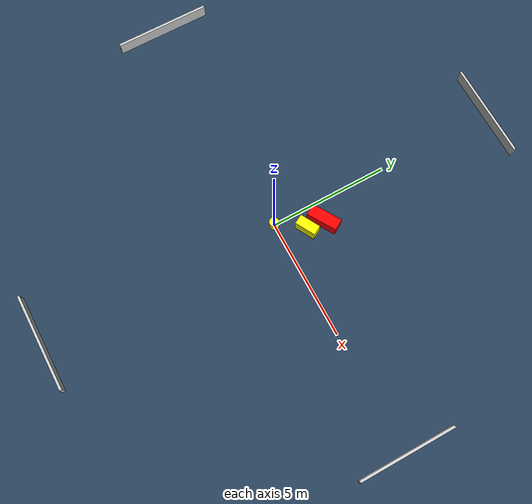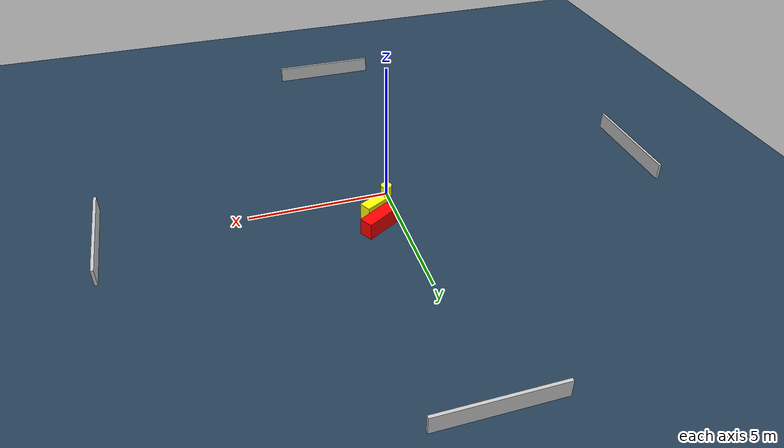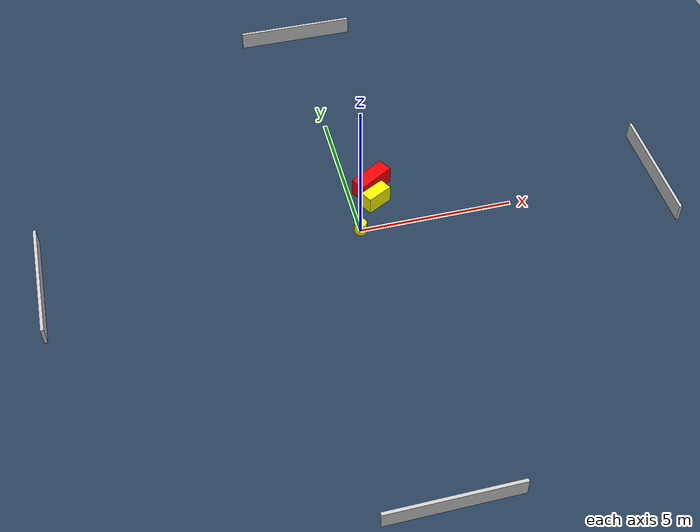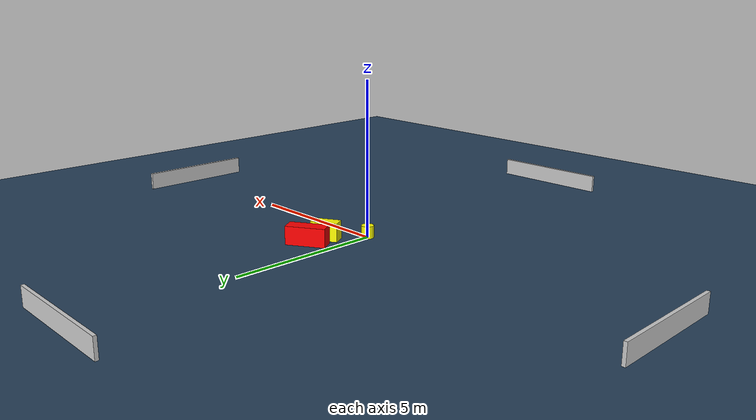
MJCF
<?xml version="1.0" ?>
<mujoco model="generated_environment">
  <option timestep="0.01" integrator="RK4" cone="elliptic"/>
  <default>
    <geom density="1"/>
  </default>
  <asset>
    <texture builtin="gradient" height="3072" name="skybox" rgb1="0.3 0.5 0.7" rgb2="0 0 0" type="skybox" width="512"/>
    <texture builtin="checker" height="300" name="groundplane" rgb1="0.2 0.3 0.4" rgb2="0.1 0.2 0.3" type="2d" width="300"/>
    <material name="groundplane" reflectance="0.2" texrepeat="5 5" texture="groundplane"/>
  </asset>
  <worldbody>
    <light dir="0 0 -1" directional="true" pos="0 0 1.5"/>
    <geom condim="3" friction="0.5 0.005 0.001" material="groundplane" name="floor" pos="0 0 0" size="0 0 0.05" type="plane"/>
    <body name="walls">
      <geom name="wall_1" condim="4" pos="-10.0 0.0 0.3" rgba="0.800000011920929 0.800000011920929 0.800000011920929 1.0" size="0.05 2.0 0.3" type="box"/>
      <geom name="wall_2" condim="4" pos="10.0 0.0 0.3" rgba="0.800000011920929 0.800000011920929 0.800000011920929 1.0" size="0.05 2.0 0.3" type="box"/>
      <geom name="wall_3" condim="4" pos="0.0 -10.0 0.3" rgba="0.800000011920929 0.800000011920929 0.800000011920929 1.0" size="2.0 0.05 0.3" type="box"/>
      <geom name="wall_4" condim="4" pos="0.0 10.0 0.3" rgba="0.800000011920929 0.800000011920929 0.800000011920929 1.0" size="2.0 0.05 0.3" type="box"/>
    </body>
    <body name="robot">
      <joint name="joint_x" type="slide" pos="0 0 0" axis="1 0 0"/>
      <joint name="joint_y" type="slide" pos="0 0 0" axis="0 1 0"/>
      <geom name="robot" type="cylinder" pos="0.0 0.0 0.2" size="0.2 0.2 0.0" mass="5.0" friction="1.0 0.005 0.0001" condim="4" rgba="1.0 1.0 0.0 1.0"/>
    </body>
    <body name="obstacle_1_movable">
      <geom name="obstacle_1_movable" condim="4" pos="0.7791173510919993 1.070829964109165 0.3" euler="0 0 208.37091005893615" friction="0.0 0.005 0.001" rgba="1.0 1.0 0.0 1.0" size="0.44187855530743786 0.21052131634405555 0.3" type="box" mass="0.1"/>
      <joint type="free"/>
    </body>
    <body name="obstacle_2_static">
      <geom name="obstacle_2_static" condim="4" pos="0.8149927498776477 1.799505694888334 0.3" euler="0 0 301.1124613721547" friction="0.0 0.005 0.001" rgba="1.0 0.0 0.0 1.0" size="0.2446638211552004 0.6429387273279064 0.3" type="box"/>
    </body>
  </worldbody>
  <actuator>
    <motor name="actuator_x" joint="joint_x" gear="1" ctrlrange="-1 1"/>
    <motor name="actuator_y" joint="joint_y" gear="1" ctrlrange="-1 1"/>
  </actuator>
</mujoco>
